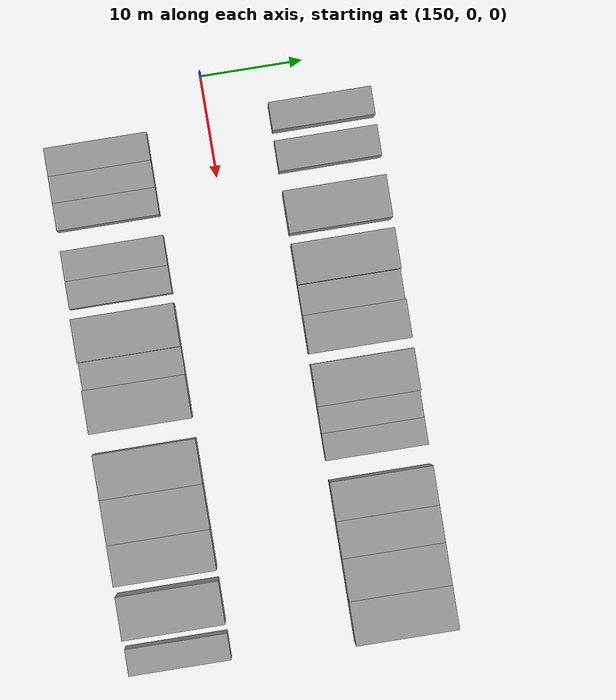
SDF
<sdf version="1.6">
 <world name="default">
  <model name="building_40">
   <static>1</static>
   <pose>155.2328 11.0000 0 0.000000 0.000000 1.570796</pose>
   <link name="link">
    <pose>0 0 3.00 0 0 0</pose>
    <collision name="collision"><geometry><box><size>10.0000 2.7458 6.0000</size></box></geometry></collision>
    <visual name="visual">
     <cast_shadows>0</cast_shadows>
     <geometry><box><size>10.0000 2.7458 6.0000</size></box></geometry>
     <material>
      <script>
       <uri>model://grey_wall/materials/scripts</uri>
       <uri>model://grey_wall/materials/textures</uri>
       <name>vrc/grey_wall</name>
      </script>
     </material>
    </visual>
   </link>
  </model>
  <model name="building_41">
   <static>1</static>
   <pose>159.0958 11.0000 0 0.000000 0.000000 1.570796</pose>
   <link name="link">
    <pose>0 0 3.00 0 0 0</pose>
    <collision name="collision"><geometry><box><size>10.0000 2.9803 6.0000</size></box></geometry></collision>
    <visual name="visual">
     <cast_shadows>0</cast_shadows>
     <geometry><box><size>10.0000 2.9803 6.0000</size></box></geometry>
     <material>
      <script>
       <uri>model://grey_wall/materials/scripts</uri>
       <uri>model://grey_wall/materials/textures</uri>
       <name>vrc/grey_wall</name>
      </script>
     </material>
    </visual>
   </link>
  </model>
  <model name="building_42">
   <static>1</static>
   <pose>164.6466 11.0000 0 0.000000 0.000000 1.570796</pose>
   <link name="link">
    <pose>0 0 4.50 0 0 0</pose>
    <collision name="collision"><geometry><box><size>10.0000 4.1212 9.0000</size></box></geometry></collision>
    <visual name="visual">
     <cast_shadows>0</cast_shadows>
     <geometry><box><size>10.0000 4.1212 9.0000</size></box></geometry>
     <material>
      <script>
       <uri>model://grey_wall/materials/scripts</uri>
       <uri>model://grey_wall/materials/textures</uri>
       <name>vrc/grey_wall</name>
      </script>
     </material>
    </visual>
   </link>
  </model>
  <model name="building_43">
   <static>1</static>
   <pose>169.6876 11.0000 0 0.000000 0.000000 1.570796</pose>
   <link name="link">
    <pose>0 0 4.50 0 0 0</pose>
    <collision name="collision"><geometry><box><size>10.0000 3.9610 9.0000</size></box></geometry></collision>
    <visual name="visual">
     <cast_shadows>0</cast_shadows>
     <geometry><box><size>10.0000 3.9610 9.0000</size></box></geometry>
     <material>
      <script>
       <uri>model://grey_wall/materials/scripts</uri>
       <uri>model://grey_wall/materials/textures</uri>
       <name>vrc/grey_wall</name>
      </script>
     </material>
    </visual>
   </link>
  </model>
  <model name="building_44">
   <static>1</static>
   <pose>173.1504 11.0000 0 0.000000 0.000000 1.570796</pose>
   <link name="link">
    <pose>0 0 3.00 0 0 0</pose>
    <collision name="collision"><geometry><box><size>10.0000 2.9644 6.0000</size></box></geometry></collision>
    <visual name="visual">
     <cast_shadows>0</cast_shadows>
     <geometry><box><size>10.0000 2.9644 6.0000</size></box></geometry>
     <material>
      <script>
       <uri>model://grey_wall/materials/scripts</uri>
       <uri>model://grey_wall/materials/textures</uri>
       <name>vrc/grey_wall</name>
      </script>
     </material>
    </visual>
   </link>
  </model>
  <model name="building_45">
   <static>1</static>
   <pose>176.4920 11.0000 0 0.000000 0.000000 1.570796</pose>
   <link name="link">
    <pose>0 0 4.50 0 0 0</pose>
    <collision name="collision"><geometry><box><size>10.0000 3.7188 9.0000</size></box></geometry></collision>
    <visual name="visual">
     <cast_shadows>0</cast_shadows>
     <geometry><box><size>10.0000 3.7188 9.0000</size></box></geometry>
     <material>
      <script>
       <uri>model://grey_wall/materials/scripts</uri>
       <uri>model://grey_wall/materials/textures</uri>
       <name>vrc/grey_wall</name>
      </script>
     </material>
    </visual>
   </link>
  </model>
  <model name="building_46">
   <static>1</static>
   <pose>181.4032 11.0000 0 0.000000 0.000000 1.570796</pose>
   <link name="link">
    <pose>0 0 4.50 0 0 0</pose>
    <collision name="collision"><geometry><box><size>10.0000 4.1037 9.0000</size></box></geometry></collision>
    <visual name="visual">
     <cast_shadows>0</cast_shadows>
     <geometry><box><size>10.0000 4.1037 9.0000</size></box></geometry>
     <material>
      <script>
       <uri>model://grey_wall/materials/scripts</uri>
       <uri>model://grey_wall/materials/textures</uri>
       <name>vrc/grey_wall</name>
      </script>
     </material>
    </visual>
   </link>
  </model>
  <model name="building_47">
   <static>1</static>
   <pose>184.7760 11.0000 0 0.000000 0.000000 1.570796</pose>
   <link name="link">
    <pose>0 0 3.00 0 0 0</pose>
    <collision name="collision"><geometry><box><size>10.0000 2.6418 6.0000</size></box></geometry></collision>
    <visual name="visual">
     <cast_shadows>0</cast_shadows>
     <geometry><box><size>10.0000 2.6418 6.0000</size></box></geometry>
     <material>
      <script>
       <uri>model://grey_wall/materials/scripts</uri>
       <uri>model://grey_wall/materials/textures</uri>
       <name>vrc/grey_wall</name>
      </script>
     </material>
    </visual>
   </link>
  </model>
  <model name="building_48">
   <static>1</static>
   <pose>187.4172 11.0000 0 0.000000 0.000000 1.570796</pose>
   <link name="link">
    <pose>0 0 3.00 0 0 0</pose>
    <collision name="collision"><geometry><box><size>10.0000 2.6407 6.0000</size></box></geometry></collision>
    <visual name="visual">
     <cast_shadows>0</cast_shadows>
     <geometry><box><size>10.0000 2.6407 6.0000</size></box></geometry>
     <material>
      <script>
       <uri>model://grey_wall/materials/scripts</uri>
       <uri>model://grey_wall/materials/textures</uri>
       <name>vrc/grey_wall</name>
      </script>
     </material>
    </visual>
   </link>
  </model>
  <model name="building_49">
   <static>1</static>
   <pose>192.6447 11.0000 0 0.000000 0.000000 1.570796</pose>
   <link name="link">
    <pose>0 0 4.50 0 0 0</pose>
    <collision name="collision"><geometry><box><size>10.0000 3.8143 9.0000</size></box></geometry></collision>
    <visual name="visual">
     <cast_shadows>0</cast_shadows>
     <geometry><box><size>10.0000 3.8143 9.0000</size></box></geometry>
     <material>
      <script>
       <uri>model://grey_wall/materials/scripts</uri>
       <uri>model://grey_wall/materials/textures</uri>
       <name>vrc/grey_wall</name>
      </script>
     </material>
    </visual>
   </link>
  </model>
  <model name="building_50">
   <static>1</static>
   <pose>196.3565 11.0000 0 0.000000 0.000000 1.570796</pose>
   <link name="link">
    <pose>0 0 4.50 0 0 0</pose>
    <collision name="collision"><geometry><box><size>10.0000 3.6092 9.0000</size></box></geometry></collision>
    <visual name="visual">
     <cast_shadows>0</cast_shadows>
     <geometry><box><size>10.0000 3.6092 9.0000</size></box></geometry>
     <material>
      <script>
       <uri>model://grey_wall/materials/scripts</uri>
       <uri>model://grey_wall/materials/textures</uri>
       <name>vrc/grey_wall</name>
      </script>
     </material>
    </visual>
   </link>
  </model>
  <model name="building_51">
   <static>1</static>
   <pose>200.2286 11.0000 0 0.000000 0.000000 1.570796</pose>
   <link name="link">
    <pose>0 0 4.50 0 0 0</pose>
    <collision name="collision"><geometry><box><size>10.0000 4.1352 9.0000</size></box></geometry></collision>
    <visual name="visual">
     <cast_shadows>0</cast_shadows>
     <geometry><box><size>10.0000 4.1352 9.0000</size></box></geometry>
     <material>
      <script>
       <uri>model://grey_wall/materials/scripts</uri>
       <uri>model://grey_wall/materials/textures</uri>
       <name>vrc/grey_wall</name>
      </script>
     </material>
    </visual>
   </link>
  </model>
  <model name="building_52">
   <static>1</static>
   <pose>204.4438 11.0000 0 0.000000 0.000000 1.570796</pose>
   <link name="link">
    <pose>0 0 4.50 0 0 0</pose>
    <collision name="collision"><geometry><box><size>10.0000 4.2951 9.0000</size></box></geometry></collision>
    <visual name="visual">
     <cast_shadows>0</cast_shadows>
     <geometry><box><size>10.0000 4.2951 9.0000</size></box></geometry>
     <material>
      <script>
       <uri>model://grey_wall/materials/scripts</uri>
       <uri>model://grey_wall/materials/textures</uri>
       <name>vrc/grey_wall</name>
      </script>
     </material>
    </visual>
   </link>
  </model>
  <model name="building_91">
   <static>1</static>
   <pose>156.1609 -11.0000 0 0.000000 0.000000 1.570796</pose>
   <link name="link">
    <pose>0 0 3.00 0 0 0</pose>
    <collision name="collision"><geometry><box><size>10.0000 2.7463 6.0000</size></box></geometry></collision>
    <visual name="visual">
     <cast_shadows>0</cast_shadows>
     <geometry><box><size>10.0000 2.7463 6.0000</size></box></geometry>
     <material>
      <script>
       <uri>model://grey_wall/materials/scripts</uri>
       <uri>model://grey_wall/materials/textures</uri>
       <name>vrc/grey_wall</name>
      </script>
     </material>
    </visual>
   </link>
  </model>
  <model name="building_92">
   <static>1</static>
   <pose>158.8476 -11.0000 0 0.000000 0.000000 1.570796</pose>
   <link name="link">
    <pose>0 0 3.00 0 0 0</pose>
    <collision name="collision"><geometry><box><size>10.0000 2.6272 6.0000</size></box></geometry></collision>
    <visual name="visual">
     <cast_shadows>0</cast_shadows>
     <geometry><box><size>10.0000 2.6272 6.0000</size></box></geometry>
     <material>
      <script>
       <uri>model://grey_wall/materials/scripts</uri>
       <uri>model://grey_wall/materials/textures</uri>
       <name>vrc/grey_wall</name>
      </script>
     </material>
    </visual>
   </link>
  </model>
  <model name="building_93">
   <static>1</static>
   <pose>161.4934 -11.0000 0 0.000000 0.000000 1.570796</pose>
   <link name="link">
    <pose>0 0 3.00 0 0 0</pose>
    <collision name="collision"><geometry><box><size>10.0000 2.6642 6.0000</size></box></geometry></collision>
    <visual name="visual">
     <cast_shadows>0</cast_shadows>
     <geometry><box><size>10.0000 2.6642 6.0000</size></box></geometry>
     <material>
      <script>
       <uri>model://grey_wall/materials/scripts</uri>
       <uri>model://grey_wall/materials/textures</uri>
       <name>vrc/grey_wall</name>
      </script>
     </material>
    </visual>
   </link>
  </model>
  <model name="building_94">
   <static>1</static>
   <pose>166.2900 -11.0000 0 0.000000 0.000000 1.570796</pose>
   <link name="link">
    <pose>0 0 3.00 0 0 0</pose>
    <collision name="collision"><geometry><box><size>10.0000 2.9291 6.0000</size></box></geometry></collision>
    <visual name="visual">
     <cast_shadows>0</cast_shadows>
     <geometry><box><size>10.0000 2.9291 6.0000</size></box></geometry>
     <material>
      <script>
       <uri>model://grey_wall/materials/scripts</uri>
       <uri>model://grey_wall/materials/textures</uri>
       <name>vrc/grey_wall</name>
      </script>
     </material>
    </visual>
   </link>
  </model>
  <model name="building_95">
   <static>1</static>
   <pose>169.1063 -11.0000 0 0.000000 0.000000 1.570796</pose>
   <link name="link">
    <pose>0 0 3.00 0 0 0</pose>
    <collision name="collision"><geometry><box><size>10.0000 2.7034 6.0000</size></box></geometry></collision>
    <visual name="visual">
     <cast_shadows>0</cast_shadows>
     <geometry><box><size>10.0000 2.7034 6.0000</size></box></geometry>
     <material>
      <script>
       <uri>model://grey_wall/materials/scripts</uri>
       <uri>model://grey_wall/materials/textures</uri>
       <name>vrc/grey_wall</name>
      </script>
     </material>
    </visual>
   </link>
  </model>
  <model name="building_96">
   <static>1</static>
   <pose>173.5607 -11.0000 0 0.000000 0.000000 1.570796</pose>
   <link name="link">
    <pose>0 0 4.50 0 0 0</pose>
    <collision name="collision"><geometry><box><size>10.0000 4.2055 9.0000</size></box></geometry></collision>
    <visual name="visual">
     <cast_shadows>0</cast_shadows>
     <geometry><box><size>10.0000 4.2055 9.0000</size></box></geometry>
     <material>
      <script>
       <uri>model://grey_wall/materials/scripts</uri>
       <uri>model://grey_wall/materials/textures</uri>
       <name>vrc/grey_wall</name>
      </script>
     </material>
    </visual>
   </link>
  </model>
  <model name="building_97">
   <static>1</static>
   <pose>177.0110 -11.0000 0 0.000000 0.000000 1.570796</pose>
   <link name="link">
    <pose>0 0 3.00 0 0 0</pose>
    <collision name="collision"><geometry><box><size>10.0000 2.6952 6.0000</size></box></geometry></collision>
    <visual name="visual">
     <cast_shadows>0</cast_shadows>
     <geometry><box><size>10.0000 2.6952 6.0000</size></box></geometry>
     <material>
      <script>
       <uri>model://grey_wall/materials/scripts</uri>
       <uri>model://grey_wall/materials/textures</uri>
       <name>vrc/grey_wall</name>
      </script>
     </material>
    </visual>
   </link>
  </model>
  <model name="building_98">
   <static>1</static>
   <pose>180.4730 -11.0000 0 0.000000 0.000000 1.570796</pose>
   <link name="link">
    <pose>0 0 4.50 0 0 0</pose>
    <collision name="collision"><geometry><box><size>10.0000 4.2288 9.0000</size></box></geometry></collision>
    <visual name="visual">
     <cast_shadows>0</cast_shadows>
     <geometry><box><size>10.0000 4.2288 9.0000</size></box></geometry>
     <material>
      <script>
       <uri>model://grey_wall/materials/scripts</uri>
       <uri>model://grey_wall/materials/textures</uri>
       <name>vrc/grey_wall</name>
      </script>
     </material>
    </visual>
   </link>
  </model>
  <model name="building_99">
   <static>1</static>
   <pose>186.7757 -11.0000 0 0.000000 0.000000 1.570796</pose>
   <link name="link">
    <pose>0 0 4.50 0 0 0</pose>
    <collision name="collision"><geometry><box><size>10.0000 4.3765 9.0000</size></box></geometry></collision>
    <visual name="visual">
     <cast_shadows>0</cast_shadows>
     <geometry><box><size>10.0000 4.3765 9.0000</size></box></geometry>
     <material>
      <script>
       <uri>model://grey_wall/materials/scripts</uri>
       <uri>model://grey_wall/materials/textures</uri>
       <name>vrc/grey_wall</name>
      </script>
     </material>
    </visual>
   </link>
  </model>
  <model name="building_100">
   <static>1</static>
   <pose>191.1532 -11.0000 0 0.000000 0.000000 1.570796</pose>
   <link name="link">
    <pose>0 0 4.50 0 0 0</pose>
    <collision name="collision"><geometry><box><size>10.0000 4.3786 9.0000</size></box></geometry></collision>
    <visual name="visual">
     <cast_shadows>0</cast_shadows>
     <geometry><box><size>10.0000 4.3786 9.0000</size></box></geometry>
     <material>
      <script>
       <uri>model://grey_wall/materials/scripts</uri>
       <uri>model://grey_wall/materials/textures</uri>
       <name>vrc/grey_wall</name>
      </script>
     </material>
    </visual>
   </link>
  </model>
  <model name="building_101">
   <static>1</static>
   <pose>195.3318 -11.0000 0 0.000000 0.000000 1.570796</pose>
   <link name="link">
    <pose>0 0 4.50 0 0 0</pose>
    <collision name="collision"><geometry><box><size>10.0000 3.9785 9.0000</size></box></geometry></collision>
    <visual name="visual">
     <cast_shadows>0</cast_shadows>
     <geometry><box><size>10.0000 3.9785 9.0000</size></box></geometry>
     <material>
      <script>
       <uri>model://grey_wall/materials/scripts</uri>
       <uri>model://grey_wall/materials/textures</uri>
       <name>vrc/grey_wall</name>
      </script>
     </material>
    </visual>
   </link>
  </model>
  <model name="building_102">
   <static>1</static>
   <pose>200.4328 -11.0000 0 0.000000 0.000000 1.570796</pose>
   <link name="link">
    <pose>0 0 4.50 0 0 0</pose>
    <collision name="collision"><geometry><box><size>10.0000 4.2236 9.0000</size></box></geometry></collision>
    <visual name="visual">
     <cast_shadows>0</cast_shadows>
     <geometry><box><size>10.0000 4.2236 9.0000</size></box></geometry>
     <material>
      <script>
       <uri>model://grey_wall/materials/scripts</uri>
       <uri>model://grey_wall/materials/textures</uri>
       <name>vrc/grey_wall</name>
      </script>
     </material>
    </visual>
   </link>
  </model>
  <model name="building_103">
   <static>1</static>
   <pose>204.8468 -11.0000 0 0.000000 0.000000 1.570796</pose>
   <link name="link">
    <pose>0 0 3.00 0 0 0</pose>
    <collision name="collision"><geometry><box><size>10.0000 2.6044 6.0000</size></box></geometry></collision>
    <visual name="visual">
     <cast_shadows>0</cast_shadows>
     <geometry><box><size>10.0000 2.6044 6.0000</size></box></geometry>
     <material>
      <script>
       <uri>model://grey_wall/materials/scripts</uri>
       <uri>model://grey_wall/materials/textures</uri>
       <name>vrc/grey_wall</name>
      </script>
     </material>
    </visual>
   </link>
  </model>
 </world>
</sdf>
